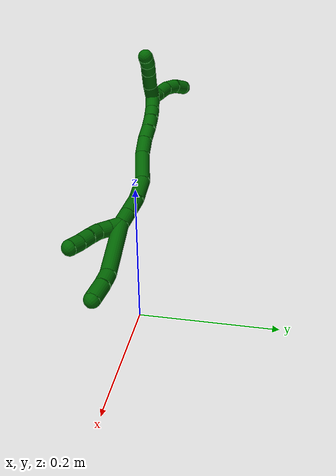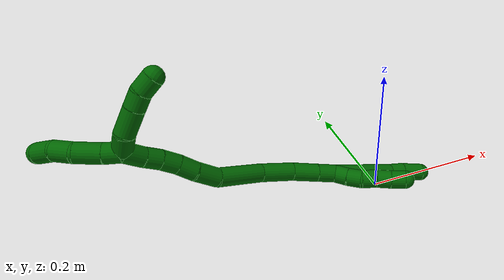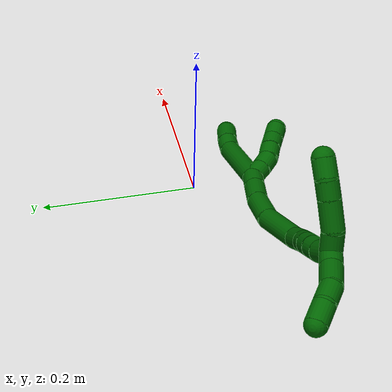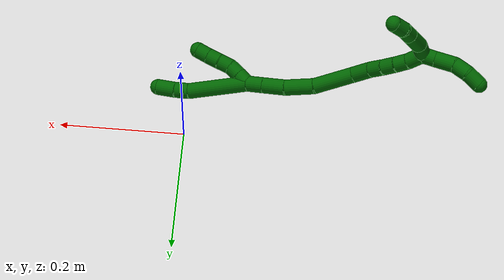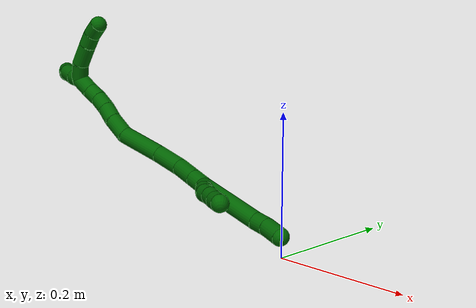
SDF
<sdf version="1.7">
 <world name="default">
  <model name="photoneo_s_sensor">
   <static>1</static>
   <pose>0 0 2 1.57079 1.57079 3.14159</pose>
   <link name="link">
    <inertial><mass>0.1</mass></inertial>
    <sensor name="sensor" type="depth">
     <update_rate>30</update_rate>
     <camera>
      <horizontal_fov>1.22</horizontal_fov>
      <image><width>1920</width><height>1200</height><format>B8G8R8</format></image>
      <clip><near>0.1</near><far>4</far></clip>
      <depth_camera><output>points</output></depth_camera>
     </camera>
     <plugin name="camera_plugin" filename="libgazebo_ros_depth_camera.so">
      <baseline>0.2</baseline>
      <alwaysOn>1</alwaysOn>
      <updateRate>0.0</updateRate>
      <cameraName>camera_ir</cameraName>
      <imageTopicName>/camera/color/image_raw</imageTopicName>
      <cameraInfoTopicName>/camera/color/camera_info</cameraInfoTopicName>
      <depthImageTopicName>/camera/depth/image_raw</depthImageTopicName>
      <depthImageCameraInfoTopicName>/camera/depth/camera_info</depthImageCameraInfoTopicName>
      <pointCloudTopicName>/camera/depth/points</pointCloudTopicName>
      <frameName>fr_optical</frameName>
      <pointCloudCutoff>0.1</pointCloudCutoff>
      <pointCloudCutoffMax>2.0</pointCloudCutoffMax>
      <distortionK1>0</distortionK1>
      <distortionK2>0</distortionK2>
      <distortionK3>0</distortionK3>
      <distortionT1>0</distortionT1>
      <distortionT2>0</distortionT2>
      <CxPrime>0</CxPrime>
      <Cx>0</Cx>
      <Cy>0</Cy>
      <focalLength>0</focalLength>
      <hackBaseline>0</hackBaseline>
     </plugin>
    </sensor>
   </link>
  </model>
  <model name="bin">
   <static>1</static>
   <link name="bottom">
    <collision name="collision-bottom">
     <pose>0 0 -0.01 0 -0 0</pose>
     <geometry><box><size>0.8 0.6 0.02</size></box></geometry>
     <surface>
      <friction><ode><mu>100</mu><mu2>100</mu2></ode></friction>
      <contact><collide_bitmask>65535</collide_bitmask></contact>
     </surface>
    </collision>
   </link>
   <link name="west_wall">
    <collision name="collision-west_wall">
     <pose>-0.41 0 0.1 0 -0 0</pose>
     <geometry><box><size>0.02 0.6 0.2</size></box></geometry>
     <surface>
      <friction><ode><mu>100</mu><mu2>100</mu2></ode></friction>
      <contact><collide_bitmask>65535</collide_bitmask></contact>
     </surface>
    </collision>
   </link>
   <link name="east_wall">
    <collision name="collision-east_wall">
     <pose>0.41 0 0.1 0 -0 0</pose>
     <geometry><box><size>0.02 0.6 0.2</size></box></geometry>
     <surface>
      <friction><ode><mu>100</mu><mu2>100</mu2></ode></friction>
      <contact><collide_bitmask>65535</collide_bitmask></contact>
     </surface>
    </collision>
   </link>
   <link name="south_wall">
    <collision name="collision-south_wall">
     <pose>0 -0.31 0.1 0 -0 0</pose>
     <geometry><box><size>0.8 0.02 0.2</size></box></geometry>
     <surface>
      <friction><ode><mu>100</mu><mu2>100</mu2></ode></friction>
      <contact><collide_bitmask>65535</collide_bitmask></contact>
     </surface>
    </collision>
   </link>
   <link name="north_wall">
    <collision name="collision-north_wall">
     <pose>0 0.31 0.1 0 -0 0</pose>
     <geometry><box><size>0.8 0.02 0.2</size></box></geometry>
     <surface>
      <friction><ode><mu>100</mu><mu2>100</mu2></ode></friction>
      <contact><collide_bitmask>65535</collide_bitmask></contact>
     </surface>
    </collision>
   </link>
  </model>
  <model name="6">
   <static>0</static>
   <link name="6">
    <collision name="collision-cylinder-e_1_2_8">
     <pose>0.029937 0.007096 -0.038024 -2.9571 0.65865 -2.61292</pose>
     <geometry><cylinder><radius>0.0125</radius><length>0.097824</length></cylinder></geometry>
     <surface>
      <friction><ode><mu>1.16</mu><mu2>1.16</mu2><slip1>0</slip1><slip2>0</slip2></ode></friction>
      <contact><ode><kp>1e+06</kp><kd>1</kd><max_vel>0</max_vel><min_depth>0.001</min_depth></ode></contact>
     </surface>
    </collision>
    <visual name="visual-cylinder-e_1_2_8">
     <pose>0.029937 0.007096 -0.038024 -2.9571 0.65865 -2.61292</pose>
     <geometry><cylinder><radius>0.0125</radius><length>0.097824</length></cylinder></geometry>
     <material><ambient>0 0.392157 0.003922 1</ambient></material>
    </visual>
    <collision name="collision-cylinder-e_2_8_9">
     <pose>0.066367 0.013401 -0.084973 3.0533 0.627135 2.87079</pose>
     <geometry><cylinder><radius>0.0125</radius><length>0.02213</length></cylinder></geometry>
     <surface>
      <friction><ode><mu>1.16</mu><mu2>1.16</mu2><slip1>0</slip1><slip2>0</slip2></ode></friction>
      <contact><ode><kp>1e+06</kp><kd>1</kd><max_vel>0</max_vel><min_depth>0.001</min_depth></ode></contact>
     </surface>
    </collision>
    <visual name="visual-cylinder-e_2_8_9">
     <pose>0.066367 0.013401 -0.084973 3.0533 0.627135 2.87079</pose>
     <geometry><cylinder><radius>0.0125</radius><length>0.02213</length></cylinder></geometry>
     <material><ambient>0 0.392157 0.003922 1</ambient></material>
    </visual>
    <collision name="collision-cylinder-e_3_9_6">
     <pose>0.080152 0.01144 -0.10698 3.05229 0.506797 2.79988</pose>
     <geometry><cylinder><radius>0.0125</radius><length>0.030046</length></cylinder></geometry>
     <surface>
      <friction><ode><mu>1.16</mu><mu2>1.16</mu2><slip1>0</slip1><slip2>0</slip2></ode></friction>
      <contact><ode><kp>1e+06</kp><kd>1</kd><max_vel>0</max_vel><min_depth>0.001</min_depth></ode></contact>
     </surface>
    </collision>
    <visual name="visual-cylinder-e_3_9_6">
     <pose>0.080152 0.01144 -0.10698 3.05229 0.506797 2.79988</pose>
     <geometry><cylinder><radius>0.0125</radius><length>0.030046</length></cylinder></geometry>
     <material><ambient>0 0.392157 0.003922 1</ambient></material>
    </visual>
    <collision name="collision-cylinder-e_1_2_10">
     <pose>0.000135 -0.004621 -0.008867 2.66115 0.013504 0.055116</pose>
     <geometry><cylinder><radius>0.0125</radius><length>0.02</length></cylinder></geometry>
     <surface>
      <friction><ode><mu>1.16</mu><mu2>1.16</mu2><slip1>0</slip1><slip2>0</slip2></ode></friction>
      <contact><ode><kp>1e+06</kp><kd>1</kd><max_vel>0</max_vel><min_depth>0.001</min_depth></ode></contact>
     </surface>
    </collision>
    <visual name="visual-cylinder-e_1_2_10">
     <pose>0.000135 -0.004621 -0.008867 2.66115 0.013504 0.055116</pose>
     <geometry><cylinder><radius>0.0125</radius><length>0.02</length></cylinder></geometry>
     <material><ambient>0 0.392157 0.003922 1</ambient></material>
    </visual>
    <collision name="collision-cylinder-e_2_10_11">
     <pose>0.001332 -0.014081 -0.026421 2.63337 0.106388 0.404403</pose>
     <geometry><cylinder><radius>0.0125</radius><length>0.02</length></cylinder></geometry>
     <surface>
      <friction><ode><mu>1.16</mu><mu2>1.16</mu2><slip1>0</slip1><slip2>0</slip2></ode></friction>
      <contact><ode><kp>1e+06</kp><kd>1</kd><max_vel>0</max_vel><min_depth>0.001</min_depth></ode></contact>
     </surface>
    </collision>
    <visual name="visual-cylinder-e_2_10_11">
     <pose>0.001332 -0.014081 -0.026421 2.63337 0.106388 0.404403</pose>
     <geometry><cylinder><radius>0.0125</radius><length>0.02</length></cylinder></geometry>
     <material><ambient>0 0.392157 0.003922 1</ambient></material>
    </visual>
    <collision name="collision-cylinder-e_3_11_12">
     <pose>0.006377 -0.022722 -0.043455 2.71424 0.409633 1.5272</pose>
     <geometry><cylinder><radius>0.0125</radius><length>0.02</length></cylinder></geometry>
     <surface>
      <friction><ode><mu>1.16</mu><mu2>1.16</mu2><slip1>0</slip1><slip2>0</slip2></ode></friction>
      <contact><ode><kp>1e+06</kp><kd>1</kd><max_vel>0</max_vel><min_depth>0.001</min_depth></ode></contact>
     </surface>
    </collision>
    <visual name="visual-cylinder-e_3_11_12">
     <pose>0.006377 -0.022722 -0.043455 2.71424 0.409633 1.5272</pose>
     <geometry><cylinder><radius>0.0125</radius><length>0.02</length></cylinder></geometry>
     <material><ambient>0 0.392157 0.003922 1</ambient></material>
    </visual>
    <collision name="collision-cylinder-e_4_12_13">
     <pose>0.013658 -0.029681 -0.060699 2.80049 0.336195 1.55601</pose>
     <geometry><cylinder><radius>0.0125</radius><length>0.02</length></cylinder></geometry>
     <surface>
      <friction><ode><mu>1.16</mu><mu2>1.16</mu2><slip1>0</slip1><slip2>0</slip2></ode></friction>
      <contact><ode><kp>1e+06</kp><kd>1</kd><max_vel>0</max_vel><min_depth>0.001</min_depth></ode></contact>
     </surface>
    </collision>
    <visual name="visual-cylinder-e_4_12_13">
     <pose>0.013658 -0.029681 -0.060699 2.80049 0.336195 1.55601</pose>
     <geometry><cylinder><radius>0.0125</radius><length>0.02</length></cylinder></geometry>
     <material><ambient>0 0.392157 0.003922 1</ambient></material>
    </visual>
    <collision name="collision-cylinder-e_5_13_5">
     <pose>0.020354 -0.036781 -0.078135 2.70913 0.346557 1.34559</pose>
     <geometry><cylinder><radius>0.0125</radius><length>0.02</length></cylinder></geometry>
     <surface>
      <friction><ode><mu>1.16</mu><mu2>1.16</mu2><slip1>0</slip1><slip2>0</slip2></ode></friction>
      <contact><ode><kp>1e+06</kp><kd>1</kd><max_vel>0</max_vel><min_depth>0.001</min_depth></ode></contact>
     </surface>
    </collision>
    <visual name="visual-cylinder-e_5_13_5">
     <pose>0.020354 -0.036781 -0.078135 2.70913 0.346557 1.34559</pose>
     <geometry><cylinder><radius>0.0125</radius><length>0.02</length></cylinder></geometry>
     <material><ambient>0 0.392157 0.003922 1</ambient></material>
    </visual>
    <collision name="collision-cylinder-e_1_2_14">
     <pose>-0.006684 0.000404 0.011565 -0.034924 -0.523785 0.009362</pose>
     <geometry><cylinder><radius>0.0125</radius><length>0.026727</length></cylinder></geometry>
     <surface>
      <friction><ode><mu>1.16</mu><mu2>1.16</mu2><slip1>0</slip1><slip2>0</slip2></ode></friction>
      <contact><ode><kp>1e+06</kp><kd>1</kd><max_vel>0</max_vel><min_depth>0.001</min_depth></ode></contact>
     </surface>
    </collision>
    <visual name="visual-cylinder-e_1_2_14">
     <pose>-0.006684 0.000404 0.011565 -0.034924 -0.523785 0.009362</pose>
     <geometry><cylinder><radius>0.0125</radius><length>0.026727</length></cylinder></geometry>
     <material><ambient>0 0.392157 0.003922 1</ambient></material>
    </visual>
    <collision name="collision-cylinder-e_2_14_15">
     <pose>-0.022477 0.001273 0.038904 -0.029447 -0.52351 0.00789</pose>
     <geometry><cylinder><radius>0.0125</radius><length>0.036443</length></cylinder></geometry>
     <surface>
      <friction><ode><mu>1.16</mu><mu2>1.16</mu2><slip1>0</slip1><slip2>0</slip2></ode></friction>
      <contact><ode><kp>1e+06</kp><kd>1</kd><max_vel>0</max_vel><min_depth>0.001</min_depth></ode></contact>
     </surface>
    </collision>
    <visual name="visual-cylinder-e_2_14_15">
     <pose>-0.022477 0.001273 0.038904 -0.029447 -0.52351 0.00789</pose>
     <geometry><cylinder><radius>0.0125</radius><length>0.036443</length></cylinder></geometry>
     <material><ambient>0 0.392157 0.003922 1</ambient></material>
    </visual>
    <collision name="collision-cylinder-e_3_15_16">
     <pose>-0.045673 0.000146 0.073053 0.086389 -0.652267 -0.029234</pose>
     <geometry><cylinder><radius>0.0125</radius><length>0.046414</length></cylinder></geometry>
     <surface>
      <friction><ode><mu>1.16</mu><mu2>1.16</mu2><slip1>0</slip1><slip2>0</slip2></ode></friction>
      <contact><ode><kp>1e+06</kp><kd>1</kd><max_vel>0</max_vel><min_depth>0.001</min_depth></ode></contact>
     </surface>
    </collision>
    <visual name="visual-cylinder-e_3_15_16">
     <pose>-0.045673 0.000146 0.073053 0.086389 -0.652267 -0.029234</pose>
     <geometry><cylinder><radius>0.0125</radius><length>0.046414</length></cylinder></geometry>
     <material><ambient>0 0.392157 0.003922 1</ambient></material>
    </visual>
    <collision name="collision-cylinder-e_4_16_17">
     <pose>-0.082444 -0.00946 0.113351 0.350473 -0.771079 -0.143467</pose>
     <geometry><cylinder><radius>0.0125</radius><length>0.065101</length></cylinder></geometry>
     <surface>
      <friction><ode><mu>1.16</mu><mu2>1.16</mu2><slip1>0</slip1><slip2>0</slip2></ode></friction>
      <contact><ode><kp>1e+06</kp><kd>1</kd><max_vel>0</max_vel><min_depth>0.001</min_depth></ode></contact>
     </surface>
    </collision>
    <visual name="visual-cylinder-e_4_16_17">
     <pose>-0.082444 -0.00946 0.113351 0.350473 -0.771079 -0.143467</pose>
     <geometry><cylinder><radius>0.0125</radius><length>0.065101</length></cylinder></geometry>
     <material><ambient>0 0.392157 0.003922 1</ambient></material>
    </visual>
    <collision name="collision-cylinder-e_5_17_18">
     <pose>-0.112017 -0.023681 0.1484 0.441693 -0.443026 -0.101037</pose>
     <geometry><cylinder><radius>0.0125</radius><length>0.032137</length></cylinder></geometry>
     <surface>
      <friction><ode><mu>1.16</mu><mu2>1.16</mu2><slip1>0</slip1><slip2>0</slip2></ode></friction>
      <contact><ode><kp>1e+06</kp><kd>1</kd><max_vel>0</max_vel><min_depth>0.001</min_depth></ode></contact>
     </surface>
    </collision>
    <visual name="visual-cylinder-e_5_17_18">
     <pose>-0.112017 -0.023681 0.1484 0.441693 -0.443026 -0.101037</pose>
     <geometry><cylinder><radius>0.0125</radius><length>0.032137</length></cylinder></geometry>
     <material><ambient>0 0.392157 0.003922 1</ambient></material>
    </visual>
    <collision name="collision-cylinder-e_6_18_19">
     <pose>-0.122629 -0.034075 0.172099 0.377113 -0.316366 -0.06086</pose>
     <geometry><cylinder><radius>0.0125</radius><length>0.023936</length></cylinder></geometry>
     <surface>
      <friction><ode><mu>1.16</mu><mu2>1.16</mu2><slip1>0</slip1><slip2>0</slip2></ode></friction>
      <contact><ode><kp>1e+06</kp><kd>1</kd><max_vel>0</max_vel><min_depth>0.001</min_depth></ode></contact>
     </surface>
    </collision>
    <visual name="visual-cylinder-e_6_18_19">
     <pose>-0.122629 -0.034075 0.172099 0.377113 -0.316366 -0.06086</pose>
     <geometry><cylinder><radius>0.0125</radius><length>0.023936</length></cylinder></geometry>
     <material><ambient>0 0.392157 0.003922 1</ambient></material>
    </visual>
    <collision name="collision-cylinder-e_7_19_20">
     <pose>-0.13101 -0.041988 0.191984 0.380542 -0.434809 -0.085038</pose>
     <geometry><cylinder><radius>0.0125</radius><length>0.022113</length></cylinder></geometry>
     <surface>
      <friction><ode><mu>1.16</mu><mu2>1.16</mu2><slip1>0</slip1><slip2>0</slip2></ode></friction>
      <contact><ode><kp>1e+06</kp><kd>1</kd><max_vel>0</max_vel><min_depth>0.001</min_depth></ode></contact>
     </surface>
    </collision>
    <visual name="visual-cylinder-e_7_19_20">
     <pose>-0.13101 -0.041988 0.191984 0.380542 -0.434809 -0.085038</pose>
     <geometry><cylinder><radius>0.0125</radius><length>0.022113</length></cylinder></geometry>
     <material><ambient>0 0.392157 0.003922 1</ambient></material>
    </visual>
    <collision name="collision-cylinder-e_8_20_21">
     <pose>-0.14115 -0.04903 0.209449 0.386425 -0.557054 -0.111781</pose>
     <geometry><cylinder><radius>0.0125</radius><length>0.020742</length></cylinder></geometry>
     <surface>
      <friction><ode><mu>1.16</mu><mu2>1.16</mu2><slip1>0</slip1><slip2>0</slip2></ode></friction>
      <contact><ode><kp>1e+06</kp><kd>1</kd><max_vel>0</max_vel><min_depth>0.001</min_depth></ode></contact>
     </surface>
    </collision>
    <visual name="visual-cylinder-e_8_20_21">
     <pose>-0.14115 -0.04903 0.209449 0.386425 -0.557054 -0.111781</pose>
     <geometry><cylinder><radius>0.0125</radius><length>0.020742</length></cylinder></geometry>
     <material><ambient>0 0.392157 0.003922 1</ambient></material>
    </visual>
    <collision name="collision-cylinder-e_9_21_1">
     <pose>-0.153086 -0.058419 0.227378 0.555756 -0.511043 -0.148762</pose>
     <geometry><cylinder><radius>0.0125</radius><length>0.026386</length></cylinder></geometry>
     <surface>
      <friction><ode><mu>1.16</mu><mu2>1.16</mu2><slip1>0</slip1><slip2>0</slip2></ode></friction>
      <contact><ode><kp>1e+06</kp><kd>1</kd><max_vel>0</max_vel><min_depth>0.001</min_depth></ode></contact>
     </surface>
    </collision>
    <visual name="visual-cylinder-e_9_21_1">
     <pose>-0.153086 -0.058419 0.227378 0.555756 -0.511043 -0.148762</pose>
     <geometry><cylinder><radius>0.0125</radius><length>0.026386</length></cylinder></geometry>
     <material><ambient>0 0.392157 0.003922 1</ambient></material>
    </visual>
    <collision name="collision-cylinder-e_1_1_22">
     <pose>-0.154943 -0.075955 0.239408 1.37666 0.374736 0.309399</pose>
     <geometry><cylinder><radius>0.0125</radius><length>0.025111</length></cylinder></geometry>
     <surface>
      <friction><ode><mu>1.16</mu><mu2>1.16</mu2><slip1>0</slip1><slip2>0</slip2></ode></friction>
      <contact><ode><kp>1e+06</kp><kd>1</kd><max_vel>0</max_vel><min_depth>0.001</min_depth></ode></contact>
     </surface>
    </collision>
    <visual name="visual-cylinder-e_1_1_22">
     <pose>-0.154943 -0.075955 0.239408 1.37666 0.374736 0.309399</pose>
     <geometry><cylinder><radius>0.0125</radius><length>0.025111</length></cylinder></geometry>
     <material><ambient>0 0.392157 0.003922 1</ambient></material>
    </visual>
    <collision name="collision-cylinder-e_2_22_23">
     <pose>-0.140445 -0.100656 0.242847 1.48151 0.640345 0.588824</pose>
     <geometry><cylinder><radius>0.0125</radius><length>0.033145</length></cylinder></geometry>
     <surface>
      <friction><ode><mu>1.16</mu><mu2>1.16</mu2><slip1>0</slip1><slip2>0</slip2></ode></friction>
      <contact><ode><kp>1e+06</kp><kd>1</kd><max_vel>0</max_vel><min_depth>0.001</min_depth></ode></contact>
     </surface>
    </collision>
    <visual name="visual-cylinder-e_2_22_23">
     <pose>-0.140445 -0.100656 0.242847 1.48151 0.640345 0.588824</pose>
     <geometry><cylinder><radius>0.0125</radius><length>0.033145</length></cylinder></geometry>
     <material><ambient>0 0.392157 0.003922 1</ambient></material>
    </visual>
    <collision name="collision-cylinder-e_3_23_24">
     <pose>-0.124318 -0.12176 0.244645 1.49304 0.667978 0.621228</pose>
     <geometry><cylinder><radius>0.0125</radius><length>0.020101</length></cylinder></geometry>
     <surface>
      <friction><ode><mu>1.16</mu><mu2>1.16</mu2><slip1>0</slip1><slip2>0</slip2></ode></friction>
      <contact><ode><kp>1e+06</kp><kd>1</kd><max_vel>0</max_vel><min_depth>0.001</min_depth></ode></contact>
     </surface>
    </collision>
    <visual name="visual-cylinder-e_3_23_24">
     <pose>-0.124318 -0.12176 0.244645 1.49304 0.667978 0.621228</pose>
     <geometry><cylinder><radius>0.0125</radius><length>0.020101</length></cylinder></geometry>
     <material><ambient>0 0.392157 0.003922 1</ambient></material>
    </visual>
    <collision name="collision-cylinder-e_4_24_4">
     <pose>-0.110735 -0.137292 0.243208 1.83212 0.747666 0.944783</pose>
     <geometry><cylinder><radius>0.0125</radius><length>0.021642</length></cylinder></geometry>
     <surface>
      <friction><ode><mu>1.16</mu><mu2>1.16</mu2><slip1>0</slip1><slip2>0</slip2></ode></friction>
      <contact><ode><kp>1e+06</kp><kd>1</kd><max_vel>0</max_vel><min_depth>0.001</min_depth></ode></contact>
     </surface>
    </collision>
    <visual name="visual-cylinder-e_4_24_4">
     <pose>-0.110735 -0.137292 0.243208 1.83212 0.747666 0.944783</pose>
     <geometry><cylinder><radius>0.0125</radius><length>0.021642</length></cylinder></geometry>
     <material><ambient>0 0.392157 0.003922 1</ambient></material>
    </visual>
    <collision name="collision-cylinder-e_1_1_25">
     <pose>-0.164616 -0.061603 0.245577 -0.33021 -0.518254 0.088281</pose>
     <geometry><cylinder><radius>0.0125</radius><length>0.0205</length></cylinder></geometry>
     <surface>
      <friction><ode><mu>1.16</mu><mu2>1.16</mu2><slip1>0</slip1><slip2>0</slip2></ode></friction>
      <contact><ode><kp>1e+06</kp><kd>1</kd><max_vel>0</max_vel><min_depth>0.001</min_depth></ode></contact>
     </surface>
    </collision>
    <visual name="visual-cylinder-e_1_1_25">
     <pose>-0.164616 -0.061603 0.245577 -0.33021 -0.518254 0.088281</pose>
     <geometry><cylinder><radius>0.0125</radius><length>0.0205</length></cylinder></geometry>
     <material><ambient>0 0.392157 0.003922 1</ambient></material>
    </visual>
    <collision name="collision-cylinder-e_2_25_26">
     <pose>-0.176533 -0.055538 0.267823 -0.225977 -0.449339 0.051851</pose>
     <geometry><cylinder><radius>0.0125</radius><length>0.031493</length></cylinder></geometry>
     <surface>
      <friction><ode><mu>1.16</mu><mu2>1.16</mu2><slip1>0</slip1><slip2>0</slip2></ode></friction>
      <contact><ode><kp>1e+06</kp><kd>1</kd><max_vel>0</max_vel><min_depth>0.001</min_depth></ode></contact>
     </surface>
    </collision>
    <visual name="visual-cylinder-e_2_25_26">
     <pose>-0.176533 -0.055538 0.267823 -0.225977 -0.449339 0.051851</pose>
     <geometry><cylinder><radius>0.0125</radius><length>0.031493</length></cylinder></geometry>
     <material><ambient>0 0.392157 0.003922 1</ambient></material>
    </visual>
    <collision name="collision-cylinder-e_3_26_27">
     <pose>-0.186085 -0.047301 0.292249 -0.44515 -0.226846 0.051551</pose>
     <geometry><cylinder><radius>0.0125</radius><length>0.024115</length></cylinder></geometry>
     <surface>
      <friction><ode><mu>1.16</mu><mu2>1.16</mu2><slip1>0</slip1><slip2>0</slip2></ode></friction>
      <contact><ode><kp>1e+06</kp><kd>1</kd><max_vel>0</max_vel><min_depth>0.001</min_depth></ode></contact>
     </surface>
    </collision>
    <visual name="visual-cylinder-e_3_26_27">
     <pose>-0.186085 -0.047301 0.292249 -0.44515 -0.226846 0.051551</pose>
     <geometry><cylinder><radius>0.0125</radius><length>0.024115</length></cylinder></geometry>
     <material><ambient>0 0.392157 0.003922 1</ambient></material>
    </visual>
    <collision name="collision-cylinder-e_4_27_3">
     <pose>-0.191673 -0.034373 0.311368 -0.746037 -0.243154 0.095555</pose>
     <geometry><cylinder><radius>0.0125</radius><length>0.023893</length></cylinder></geometry>
     <surface>
      <friction><ode><mu>1.16</mu><mu2>1.16</mu2><slip1>0</slip1><slip2>0</slip2></ode></friction>
      <contact><ode><kp>1e+06</kp><kd>1</kd><max_vel>0</max_vel><min_depth>0.001</min_depth></ode></contact>
     </surface>
    </collision>
    <visual name="visual-cylinder-e_4_27_3">
     <pose>-0.191673 -0.034373 0.311368 -0.746037 -0.243154 0.095555</pose>
     <geometry><cylinder><radius>0.0125</radius><length>0.023893</length></cylinder></geometry>
     <material><ambient>0 0.392157 0.003922 1</ambient></material>
    </visual>
    <collision name="collision-sphere-3">
     <pose>-0.194549 -0.026503 0.319883 0 -0 0</pose>
     <geometry><sphere><radius>0.0125</radius></sphere></geometry>
     <surface>
      <friction><ode><mu>1.16</mu><mu2>1.16</mu2><slip1>0</slip1><slip2>0</slip2></ode></friction>
      <contact><ode><kp>1e+06</kp><kd>1</kd><max_vel>0</max_vel><min_depth>0.001</min_depth></ode></contact>
     </surface>
    </collision>
    <visual name="visual-sphere-3">
     <pose>-0.194549 -0.026503 0.319883 0 -0 0</pose>
     <geometry><sphere><radius>0.0125</radius></sphere></geometry>
     <material><ambient>0 0.392157 0.003922 1</ambient></material>
    </visual>
    <collision name="collision-sphere-27">
     <pose>-0.188796 -0.042243 0.302852 0 -0 0</pose>
     <geometry><sphere><radius>0.0125</radius></sphere></geometry>
     <surface>
      <friction><ode><mu>1.16</mu><mu2>1.16</mu2><slip1>0</slip1><slip2>0</slip2></ode></friction>
      <contact><ode><kp>1e+06</kp><kd>1</kd><max_vel>0</max_vel><min_depth>0.001</min_depth></ode></contact>
     </surface>
    </collision>
    <visual name="visual-sphere-27">
     <pose>-0.188796 -0.042243 0.302852 0 -0 0</pose>
     <geometry><sphere><radius>0.0125</radius></sphere></geometry>
     <material><ambient>0 0.392157 0.003922 1</ambient></material>
    </visual>
    <collision name="collision-sphere-26">
     <pose>-0.183373 -0.05236 0.281645 0 -0 0</pose>
     <geometry><sphere><radius>0.0125</radius></sphere></geometry>
     <surface>
      <friction><ode><mu>1.16</mu><mu2>1.16</mu2><slip1>0</slip1><slip2>0</slip2></ode></friction>
      <contact><ode><kp>1e+06</kp><kd>1</kd><max_vel>0</max_vel><min_depth>0.001</min_depth></ode></contact>
     </surface>
    </collision>
    <visual name="visual-sphere-26">
     <pose>-0.183373 -0.05236 0.281645 0 -0 0</pose>
     <geometry><sphere><radius>0.0125</radius></sphere></geometry>
     <material><ambient>0 0.392157 0.003922 1</ambient></material>
    </visual>
    <collision name="collision-sphere-25">
     <pose>-0.169693 -0.058716 0.254 0 -0 0</pose>
     <geometry><sphere><radius>0.0125</radius></sphere></geometry>
     <surface>
      <friction><ode><mu>1.16</mu><mu2>1.16</mu2><slip1>0</slip1><slip2>0</slip2></ode></friction>
      <contact><ode><kp>1e+06</kp><kd>1</kd><max_vel>0</max_vel><min_depth>0.001</min_depth></ode></contact>
     </surface>
    </collision>
    <visual name="visual-sphere-25">
     <pose>-0.169693 -0.058716 0.254 0 -0 0</pose>
     <geometry><sphere><radius>0.0125</radius></sphere></geometry>
     <material><ambient>0 0.392157 0.003922 1</ambient></material>
    </visual>
    <collision name="collision-sphere-4">
     <pose>-0.103378 -0.144957 0.241158 0 -0 0</pose>
     <geometry><sphere><radius>0.0125</radius></sphere></geometry>
     <surface>
      <friction><ode><mu>1.16</mu><mu2>1.16</mu2><slip1>0</slip1><slip2>0</slip2></ode></friction>
      <contact><ode><kp>1e+06</kp><kd>1</kd><max_vel>0</max_vel><min_depth>0.001</min_depth></ode></contact>
     </surface>
    </collision>
    <visual name="visual-sphere-4">
     <pose>-0.103378 -0.144957 0.241158 0 -0 0</pose>
     <geometry><sphere><radius>0.0125</radius></sphere></geometry>
     <material><ambient>0 0.392157 0.003922 1</ambient></material>
    </visual>
    <collision name="collision-sphere-24">
     <pose>-0.118093 -0.129626 0.245258 0 -0 0</pose>
     <geometry><sphere><radius>0.0125</radius></sphere></geometry>
     <surface>
      <friction><ode><mu>1.16</mu><mu2>1.16</mu2><slip1>0</slip1><slip2>0</slip2></ode></friction>
      <contact><ode><kp>1e+06</kp><kd>1</kd><max_vel>0</max_vel><min_depth>0.001</min_depth></ode></contact>
     </surface>
    </collision>
    <visual name="visual-sphere-24">
     <pose>-0.118093 -0.129626 0.245258 0 -0 0</pose>
     <geometry><sphere><radius>0.0125</radius></sphere></geometry>
     <material><ambient>0 0.392157 0.003922 1</ambient></material>
    </visual>
    <collision name="collision-sphere-23">
     <pose>-0.130543 -0.113893 0.244032 0 -0 0</pose>
     <geometry><sphere><radius>0.0125</radius></sphere></geometry>
     <surface>
      <friction><ode><mu>1.16</mu><mu2>1.16</mu2><slip1>0</slip1><slip2>0</slip2></ode></friction>
      <contact><ode><kp>1e+06</kp><kd>1</kd><max_vel>0</max_vel><min_depth>0.001</min_depth></ode></contact>
     </surface>
    </collision>
    <visual name="visual-sphere-23">
     <pose>-0.130543 -0.113893 0.244032 0 -0 0</pose>
     <geometry><sphere><radius>0.0125</radius></sphere></geometry>
     <material><ambient>0 0.392157 0.003922 1</ambient></material>
    </visual>
    <collision name="collision-sphere-22">
     <pose>-0.150347 -0.08742 0.241662 0 -0 0</pose>
     <geometry><sphere><radius>0.0125</radius></sphere></geometry>
     <surface>
      <friction><ode><mu>1.16</mu><mu2>1.16</mu2><slip1>0</slip1><slip2>0</slip2></ode></friction>
      <contact><ode><kp>1e+06</kp><kd>1</kd><max_vel>0</max_vel><min_depth>0.001</min_depth></ode></contact>
     </surface>
    </collision>
    <visual name="visual-sphere-22">
     <pose>-0.150347 -0.08742 0.241662 0 -0 0</pose>
     <geometry><sphere><radius>0.0125</radius></sphere></geometry>
     <material><ambient>0 0.392157 0.003922 1</ambient></material>
    </visual>
    <collision name="collision-sphere-1">
     <pose>-0.159538 -0.06449 0.237154 0 -0 0</pose>
     <geometry><sphere><radius>0.0125</radius></sphere></geometry>
     <surface>
      <friction><ode><mu>1.16</mu><mu2>1.16</mu2><slip1>0</slip1><slip2>0</slip2></ode></friction>
      <contact><ode><kp>1e+06</kp><kd>1</kd><max_vel>0</max_vel><min_depth>0.001</min_depth></ode></contact>
     </surface>
    </collision>
    <visual name="visual-sphere-1">
     <pose>-0.159538 -0.06449 0.237154 0 -0 0</pose>
     <geometry><sphere><radius>0.0125</radius></sphere></geometry>
     <material><ambient>0 0.392157 0.003922 1</ambient></material>
    </visual>
    <collision name="collision-sphere-21">
     <pose>-0.146633 -0.052348 0.217603 0 -0 0</pose>
     <geometry><sphere><radius>0.0125</radius></sphere></geometry>
     <surface>
      <friction><ode><mu>1.16</mu><mu2>1.16</mu2><slip1>0</slip1><slip2>0</slip2></ode></friction>
      <contact><ode><kp>1e+06</kp><kd>1</kd><max_vel>0</max_vel><min_depth>0.001</min_depth></ode></contact>
     </surface>
    </collision>
    <visual name="visual-sphere-21">
     <pose>-0.146633 -0.052348 0.217603 0 -0 0</pose>
     <geometry><sphere><radius>0.0125</radius></sphere></geometry>
     <material><ambient>0 0.392157 0.003922 1</ambient></material>
    </visual>
    <collision name="collision-sphere-11">
     <pose>0.002394 -0.01892 -0.035108 0 -0 0</pose>
     <geometry><sphere><radius>0.0125</radius></sphere></geometry>
     <surface>
      <friction><ode><mu>1.16</mu><mu2>1.16</mu2><slip1>0</slip1><slip2>0</slip2></ode></friction>
      <contact><ode><kp>1e+06</kp><kd>1</kd><max_vel>0</max_vel><min_depth>0.001</min_depth></ode></contact>
     </surface>
    </collision>
    <visual name="visual-sphere-11">
     <pose>0.002394 -0.01892 -0.035108 0 -0 0</pose>
     <geometry><sphere><radius>0.0125</radius></sphere></geometry>
     <material><ambient>0 0.392157 0.003922 1</ambient></material>
    </visual>
    <collision name="collision-sphere-10">
     <pose>0.00027 -0.009243 -0.017734 0 -0 0</pose>
     <geometry><sphere><radius>0.0125</radius></sphere></geometry>
     <surface>
      <friction><ode><mu>1.16</mu><mu2>1.16</mu2><slip1>0</slip1><slip2>0</slip2></ode></friction>
      <contact><ode><kp>1e+06</kp><kd>1</kd><max_vel>0</max_vel><min_depth>0.001</min_depth></ode></contact>
     </surface>
    </collision>
    <visual name="visual-sphere-10">
     <pose>0.00027 -0.009243 -0.017734 0 -0 0</pose>
     <geometry><sphere><radius>0.0125</radius></sphere></geometry>
     <material><ambient>0 0.392157 0.003922 1</ambient></material>
    </visual>
    <collision name="collision-sphere-6">
     <pose>0.087443 0.010269 -0.120062 0 -0 0</pose>
     <geometry><sphere><radius>0.0125</radius></sphere></geometry>
     <surface>
      <friction><ode><mu>1.16</mu><mu2>1.16</mu2><slip1>0</slip1><slip2>0</slip2></ode></friction>
      <contact><ode><kp>1e+06</kp><kd>1</kd><max_vel>0</max_vel><min_depth>0.001</min_depth></ode></contact>
     </surface>
    </collision>
    <visual name="visual-sphere-6">
     <pose>0.087443 0.010269 -0.120062 0 -0 0</pose>
     <geometry><sphere><radius>0.0125</radius></sphere></geometry>
     <material><ambient>0 0.392157 0.003922 1</ambient></material>
    </visual>
    <collision name="collision-sphere-9">
     <pose>0.07286 0.012611 -0.093898 0 -0 0</pose>
     <geometry><sphere><radius>0.0125</radius></sphere></geometry>
     <surface>
      <friction><ode><mu>1.16</mu><mu2>1.16</mu2><slip1>0</slip1><slip2>0</slip2></ode></friction>
      <contact><ode><kp>1e+06</kp><kd>1</kd><max_vel>0</max_vel><min_depth>0.001</min_depth></ode></contact>
     </surface>
    </collision>
    <visual name="visual-sphere-9">
     <pose>0.07286 0.012611 -0.093898 0 -0 0</pose>
     <geometry><sphere><radius>0.0125</radius></sphere></geometry>
     <material><ambient>0 0.392157 0.003922 1</ambient></material>
    </visual>
    <collision name="collision-sphere-2">
     <geometry><sphere><radius>0.0125</radius></sphere></geometry>
     <surface>
      <friction><ode><mu>1.16</mu><mu2>1.16</mu2><slip1>0</slip1><slip2>0</slip2></ode></friction>
      <contact><ode><kp>1e+06</kp><kd>1</kd><max_vel>0</max_vel><min_depth>0.001</min_depth></ode></contact>
     </surface>
    </collision>
    <visual name="visual-sphere-2">
     <geometry><sphere><radius>0.0125</radius></sphere></geometry>
     <material><ambient>0 0.392157 0.003922 1</ambient></material>
    </visual>
    <collision name="collision-sphere-19">
     <pose>-0.126352 -0.038263 0.182674 0 -0 0</pose>
     <geometry><sphere><radius>0.0125</radius></sphere></geometry>
     <surface>
      <friction><ode><mu>1.16</mu><mu2>1.16</mu2><slip1>0</slip1><slip2>0</slip2></ode></friction>
      <contact><ode><kp>1e+06</kp><kd>1</kd><max_vel>0</max_vel><min_depth>0.001</min_depth></ode></contact>
     </surface>
    </collision>
    <visual name="visual-sphere-19">
     <pose>-0.126352 -0.038263 0.182674 0 -0 0</pose>
     <geometry><sphere><radius>0.0125</radius></sphere></geometry>
     <material><ambient>0 0.392157 0.003922 1</ambient></material>
    </visual>
    <collision name="collision-sphere-8">
     <pose>0.059873 0.014192 -0.076048 0 -0 0</pose>
     <geometry><sphere><radius>0.0125</radius></sphere></geometry>
     <surface>
      <friction><ode><mu>1.16</mu><mu2>1.16</mu2><slip1>0</slip1><slip2>0</slip2></ode></friction>
      <contact><ode><kp>1e+06</kp><kd>1</kd><max_vel>0</max_vel><min_depth>0.001</min_depth></ode></contact>
     </surface>
    </collision>
    <visual name="visual-sphere-8">
     <pose>0.059873 0.014192 -0.076048 0 -0 0</pose>
     <geometry><sphere><radius>0.0125</radius></sphere></geometry>
     <material><ambient>0 0.392157 0.003922 1</ambient></material>
    </visual>
    <collision name="collision-sphere-12">
     <pose>0.010359 -0.026523 -0.051803 0 -0 0</pose>
     <geometry><sphere><radius>0.0125</radius></sphere></geometry>
     <surface>
      <friction><ode><mu>1.16</mu><mu2>1.16</mu2><slip1>0</slip1><slip2>0</slip2></ode></friction>
      <contact><ode><kp>1e+06</kp><kd>1</kd><max_vel>0</max_vel><min_depth>0.001</min_depth></ode></contact>
     </surface>
    </collision>
    <visual name="visual-sphere-12">
     <pose>0.010359 -0.026523 -0.051803 0 -0 0</pose>
     <geometry><sphere><radius>0.0125</radius></sphere></geometry>
     <material><ambient>0 0.392157 0.003922 1</ambient></material>
    </visual>
    <collision name="collision-sphere-13">
     <pose>0.016957 -0.032839 -0.069596 0 -0 0</pose>
     <geometry><sphere><radius>0.0125</radius></sphere></geometry>
     <surface>
      <friction><ode><mu>1.16</mu><mu2>1.16</mu2><slip1>0</slip1><slip2>0</slip2></ode></friction>
      <contact><ode><kp>1e+06</kp><kd>1</kd><max_vel>0</max_vel><min_depth>0.001</min_depth></ode></contact>
     </surface>
    </collision>
    <visual name="visual-sphere-13">
     <pose>0.016957 -0.032839 -0.069596 0 -0 0</pose>
     <geometry><sphere><radius>0.0125</radius></sphere></geometry>
     <material><ambient>0 0.392157 0.003922 1</ambient></material>
    </visual>
    <collision name="collision-sphere-5">
     <pose>0.02375 -0.040723 -0.086675 0 -0 0</pose>
     <geometry><sphere><radius>0.0125</radius></sphere></geometry>
     <surface>
      <friction><ode><mu>1.16</mu><mu2>1.16</mu2><slip1>0</slip1><slip2>0</slip2></ode></friction>
      <contact><ode><kp>1e+06</kp><kd>1</kd><max_vel>0</max_vel><min_depth>0.001</min_depth></ode></contact>
     </surface>
    </collision>
    <visual name="visual-sphere-5">
     <pose>0.02375 -0.040723 -0.086675 0 -0 0</pose>
     <geometry><sphere><radius>0.0125</radius></sphere></geometry>
     <material><ambient>0 0.392157 0.003922 1</ambient></material>
    </visual>
    <collision name="collision-sphere-14">
     <pose>-0.013368 0.000808 0.02313 0 -0 0</pose>
     <geometry><sphere><radius>0.0125</radius></sphere></geometry>
     <surface>
      <friction><ode><mu>1.16</mu><mu2>1.16</mu2><slip1>0</slip1><slip2>0</slip2></ode></friction>
      <contact><ode><kp>1e+06</kp><kd>1</kd><max_vel>0</max_vel><min_depth>0.001</min_depth></ode></contact>
     </surface>
    </collision>
    <visual name="visual-sphere-14">
     <pose>-0.013368 0.000808 0.02313 0 -0 0</pose>
     <geometry><sphere><radius>0.0125</radius></sphere></geometry>
     <material><ambient>0 0.392157 0.003922 1</ambient></material>
    </visual>
    <collision name="collision-sphere-15">
     <pose>-0.031587 0.001737 0.054678 0 -0 0</pose>
     <geometry><sphere><radius>0.0125</radius></sphere></geometry>
     <surface>
      <friction><ode><mu>1.16</mu><mu2>1.16</mu2><slip1>0</slip1><slip2>0</slip2></ode></friction>
      <contact><ode><kp>1e+06</kp><kd>1</kd><max_vel>0</max_vel><min_depth>0.001</min_depth></ode></contact>
     </surface>
    </collision>
    <visual name="visual-sphere-15">
     <pose>-0.031587 0.001737 0.054678 0 -0 0</pose>
     <geometry><sphere><radius>0.0125</radius></sphere></geometry>
     <material><ambient>0 0.392157 0.003922 1</ambient></material>
    </visual>
    <collision name="collision-sphere-16">
     <pose>-0.05976 -0.001445 0.091427 0 -0 0</pose>
     <geometry><sphere><radius>0.0125</radius></sphere></geometry>
     <surface>
      <friction><ode><mu>1.16</mu><mu2>1.16</mu2><slip1>0</slip1><slip2>0</slip2></ode></friction>
      <contact><ode><kp>1e+06</kp><kd>1</kd><max_vel>0</max_vel><min_depth>0.001</min_depth></ode></contact>
     </surface>
    </collision>
    <visual name="visual-sphere-16">
     <pose>-0.05976 -0.001445 0.091427 0 -0 0</pose>
     <geometry><sphere><radius>0.0125</radius></sphere></geometry>
     <material><ambient>0 0.392157 0.003922 1</ambient></material>
    </visual>
    <collision name="collision-sphere-17">
     <pose>-0.105129 -0.017475 0.135276 0 -0 0</pose>
     <geometry><sphere><radius>0.0125</radius></sphere></geometry>
     <surface>
      <friction><ode><mu>1.16</mu><mu2>1.16</mu2><slip1>0</slip1><slip2>0</slip2></ode></friction>
      <contact><ode><kp>1e+06</kp><kd>1</kd><max_vel>0</max_vel><min_depth>0.001</min_depth></ode></contact>
     </surface>
    </collision>
    <visual name="visual-sphere-17">
     <pose>-0.105129 -0.017475 0.135276 0 -0 0</pose>
     <geometry><sphere><radius>0.0125</radius></sphere></geometry>
     <material><ambient>0 0.392157 0.003922 1</ambient></material>
    </visual>
    <collision name="collision-sphere-18">
     <pose>-0.118905 -0.029886 0.161524 0 -0 0</pose>
     <geometry><sphere><radius>0.0125</radius></sphere></geometry>
     <surface>
      <friction><ode><mu>1.16</mu><mu2>1.16</mu2><slip1>0</slip1><slip2>0</slip2></ode></friction>
      <contact><ode><kp>1e+06</kp><kd>1</kd><max_vel>0</max_vel><min_depth>0.001</min_depth></ode></contact>
     </surface>
    </collision>
    <visual name="visual-sphere-18">
     <pose>-0.118905 -0.029886 0.161524 0 -0 0</pose>
     <geometry><sphere><radius>0.0125</radius></sphere></geometry>
     <material><ambient>0 0.392157 0.003922 1</ambient></material>
    </visual>
    <collision name="collision-sphere-20">
     <pose>-0.135667 -0.045712 0.201295 0 -0 0</pose>
     <geometry><sphere><radius>0.0125</radius></sphere></geometry>
     <surface>
      <friction><ode><mu>1.16</mu><mu2>1.16</mu2><slip1>0</slip1><slip2>0</slip2></ode></friction>
      <contact><ode><kp>1e+06</kp><kd>1</kd><max_vel>0</max_vel><min_depth>0.001</min_depth></ode></contact>
     </surface>
    </collision>
    <visual name="visual-sphere-20">
     <pose>-0.135667 -0.045712 0.201295 0 -0 0</pose>
     <geometry><sphere><radius>0.0125</radius></sphere></geometry>
     <material><ambient>0 0.392157 0.003922 1</ambient></material>
    </visual>
    <inertial>
     <pose>-0.064912 -0.029433 0.100009 0 -0 0</pose>
     <mass>0.75</mass>
     <inertia><ixx>-2.5e-05</ixx><ixy>0</ixy><ixz>0</ixz><iyy>0.000107</iyy><iyz>0</iyz><izz>-7e-06</izz></inertia>
    </inertial>
   </link>
   <pose>-0.097931 -0.050238 0.09139 -1.09295 -0.263562 0.763139</pose>
  </model>
 </world>
</sdf>
